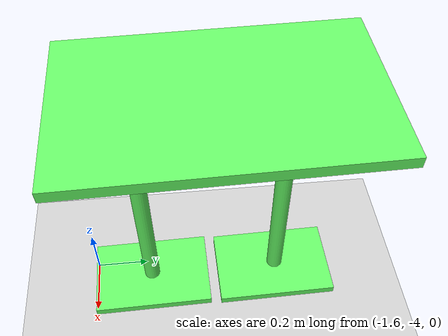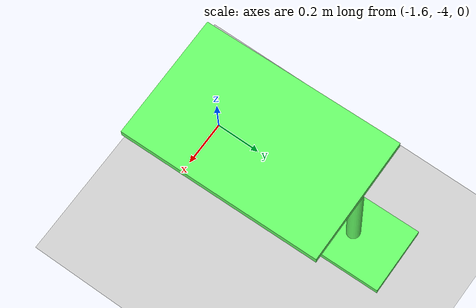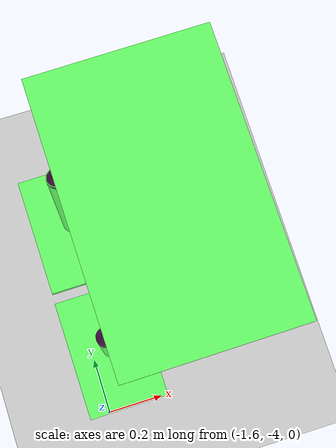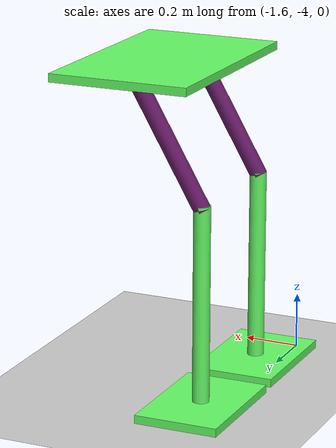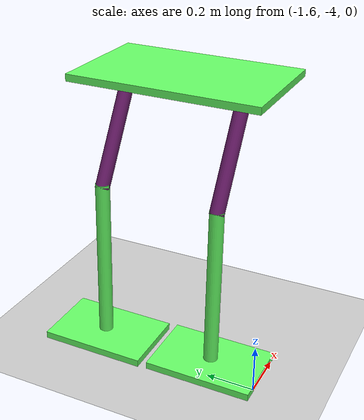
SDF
<sdf version="1.6">
 <world name="default">
  <model name="ground_plane">
   <static>1</static>
   <link name="link">
    <collision name="collision">
     <geometry><plane><normal>0 0 1</normal><size>100 100</size></plane></geometry>
     <surface><friction><ode><mu>100</mu><mu2>50</mu2></ode></friction></surface>
    </collision>
    <visual name="visual">
     <cast_shadows>0</cast_shadows>
     <geometry><plane><normal>0 0 1</normal><size>100 100</size></plane></geometry>
     <material>
      <script><uri>file://media/materials/scripts/gazebo.material</uri><name>Gazebo/Grey</name></script>
     </material>
    </visual>
   </link>
  </model>
  <model name="HumanoidRobot_clone">
   <link name="link_0">
    <inertial>
     <mass>0.5</mass>
     <inertia>
      <ixx>0.166667</ixx>
      <ixy>0</ixy>
      <ixz>0</ixz>
      <iyy>0.166667</iyy>
      <iyz>0</iyz>
      <izz>0.166667</izz>
     </inertia>
    </inertial>
    <pose>-0.001429 0.140202 1.05373 0 -0 0</pose>
    <visual name="visual">
     <geometry><box><size>0.8 0.5 0.03</size></box></geometry>
     <material>
      <lighting>1</lighting>
      <script><uri>file://media/materials/scripts/gazebo.material</uri><name>Gazebo/Grey</name></script>
      <shader type="pixel"><normal_map>__default__</normal_map></shader>
      <ambient>0.1 1 0.1 1</ambient>
      <diffuse>0.4 1 0.4 1</diffuse>
      <specular>0.01 0.01 0.01 1</specular>
      <emissive>0 0 0 1</emissive>
     </material>
    </visual>
    <collision name="collision">
     <geometry><box><size>0.8 0.5 0.03</size></box></geometry>
     <surface>
      <friction>
       <ode><mu>1</mu><mu2>1</mu2><fdir1>0 0 0</fdir1><slip1>0</slip1><slip2>0</slip2></ode>
       <torsional>
        <coefficient>1</coefficient>
        <patch_radius>0</patch_radius>
        <surface_radius>0</surface_radius>
        <use_patch_radius>1</use_patch_radius>
        <ode><slip>0</slip></ode>
       </torsional>
      </friction>
      <bounce><restitution_coefficient>0</restitution_coefficient><threshold>1e+06</threshold></bounce>
      <contact>
       <collide_without_contact>0</collide_without_contact>
       <collide_without_contact_bitmask>1</collide_without_contact_bitmask>
       <collide_bitmask>1</collide_bitmask>
       <ode>
        <soft_cfm>0</soft_cfm>
        <soft_erp>0.2</soft_erp>
        <kp>1e+13</kp>
        <kd>1</kd>
        <max_vel>0.01</max_vel>
        <min_depth>0</min_depth>
       </ode>
       <bullet>
        <split_impulse>1</split_impulse>
        <split_impulse_penetration_threshold>-0.01</split_impulse_penetration_threshold>
        <soft_cfm>0</soft_cfm>
        <soft_erp>0.2</soft_erp>
        <kp>1e+13</kp>
        <kd>1</kd>
       </bullet>
      </contact>
     </surface>
    </collision>
   </link>
   <link name="link_1">
    <inertial>
     <mass>1</mass>
     <inertia>
      <ixx>0.166667</ixx>
      <ixy>0</ixy>
      <ixz>0</ixz>
      <iyy>0.166667</iyy>
      <iyz>0</iyz>
      <izz>0.166667</izz>
     </inertia>
    </inertial>
    <pose>-0.241429 -0.104023 -0.081476 0 -0 0</pose>
    <visual name="visual">
     <geometry><box><size>0.45 0.3 0.03</size></box></geometry>
     <material>
      <lighting>1</lighting>
      <script><uri>file://media/materials/scripts/gazebo.material</uri><name>Gazebo/Grey</name></script>
      <shader type="pixel"><normal_map>__default__</normal_map></shader>
      <ambient>0.1 1 0.1 1</ambient>
      <diffuse>0.4 1 0.4 1</diffuse>
      <specular>0.01 0.01 0.01 1</specular>
      <emissive>0 0 0 1</emissive>
     </material>
    </visual>
    <collision name="collision">
     <geometry><box><size>0.45 0.3 0.03</size></box></geometry>
     <surface>
      <friction>
       <ode><mu>1</mu><mu2>1</mu2><fdir1>0 0 0</fdir1><slip1>0</slip1><slip2>0</slip2></ode>
       <torsional>
        <coefficient>1</coefficient>
        <patch_radius>0</patch_radius>
        <surface_radius>0</surface_radius>
        <use_patch_radius>1</use_patch_radius>
        <ode><slip>0</slip></ode>
       </torsional>
      </friction>
      <bounce><restitution_coefficient>0</restitution_coefficient><threshold>1e+06</threshold></bounce>
      <contact>
       <collide_without_contact>0</collide_without_contact>
       <collide_without_contact_bitmask>1</collide_without_contact_bitmask>
       <collide_bitmask>1</collide_bitmask>
       <ode>
        <soft_cfm>0</soft_cfm>
        <soft_erp>0.2</soft_erp>
        <kp>1e+13</kp>
        <kd>1</kd>
        <max_vel>0.01</max_vel>
        <min_depth>0</min_depth>
       </ode>
       <bullet>
        <split_impulse>1</split_impulse>
        <split_impulse_penetration_threshold>-0.01</split_impulse_penetration_threshold>
        <soft_cfm>0</soft_cfm>
        <soft_erp>0.2</soft_erp>
        <kp>1e+13</kp>
        <kd>1</kd>
       </bullet>
      </contact>
     </surface>
    </collision>
   </link>
   <link name="link_1_clone">
    <inertial>
     <mass>0.5</mass>
     <inertia>
      <ixx>0.166667</ixx>
      <ixy>0</ixy>
      <ixz>0</ixz>
      <iyy>0.166667</iyy>
      <iyz>0</iyz>
      <izz>0.166667</izz>
     </inertia>
    </inertial>
    <pose>0.248571 -0.105528 -0.074363 0 -0 0</pose>
    <visual name="visual">
     <geometry><box><size>0.45 0.3 0.03</size></box></geometry>
     <material>
      <lighting>1</lighting>
      <script><uri>file://media/materials/scripts/gazebo.material</uri><name>Gazebo/Grey</name></script>
      <shader type="pixel"><normal_map>__default__</normal_map></shader>
      <ambient>0.1 1 0.1 1</ambient>
      <diffuse>0.4 1 0.4 1</diffuse>
      <specular>0.01 0.01 0.01 1</specular>
      <emissive>0 0 0 1</emissive>
     </material>
    </visual>
    <collision name="collision">
     <geometry><box><size>0.45 0.3 0.03</size></box></geometry>
     <surface>
      <friction>
       <ode><mu>1</mu><mu2>1</mu2><fdir1>0 0 0</fdir1><slip1>0</slip1><slip2>0</slip2></ode>
       <torsional>
        <coefficient>1</coefficient>
        <patch_radius>0</patch_radius>
        <surface_radius>0</surface_radius>
        <use_patch_radius>1</use_patch_radius>
        <ode><slip>0</slip></ode>
       </torsional>
      </friction>
      <bounce><restitution_coefficient>0</restitution_coefficient><threshold>1e+06</threshold></bounce>
      <contact>
       <collide_without_contact>0</collide_without_contact>
       <collide_without_contact_bitmask>1</collide_without_contact_bitmask>
       <collide_bitmask>1</collide_bitmask>
       <ode>
        <soft_cfm>0</soft_cfm>
        <soft_erp>0.2</soft_erp>
        <kp>1e+13</kp>
        <kd>1</kd>
        <max_vel>0.01</max_vel>
        <min_depth>0</min_depth>
       </ode>
       <bullet>
        <split_impulse>1</split_impulse>
        <split_impulse_penetration_threshold>-0.01</split_impulse_penetration_threshold>
        <soft_cfm>0</soft_cfm>
        <soft_erp>0.2</soft_erp>
        <kp>1e+13</kp>
        <kd>1</kd>
       </bullet>
      </contact>
     </surface>
    </collision>
   </link>
   <link name="link_2">
    <inertial>
     <mass>0.5</mass>
     <inertia><ixx>0.145833</ixx><ixy>0</ixy><ixz>0</ixz><iyy>0.145833</iyy><iyz>0</iyz><izz>0.125</izz></inertia>
    </inertial>
    <pose>-0.251429 -0.105528 0.633067 0 -0 0</pose>
    <visual name="visual">
     <pose>0 0 -0.35 0 -0 0</pose>
     <geometry><cylinder><radius>0.03</radius><length>0.7</length></cylinder></geometry>
     <material>
      <lighting>1</lighting>
      <script><uri>file://media/materials/scripts/gazebo.material</uri><name>Gazebo/Grey</name></script>
      <shader type="pixel"><normal_map>__default__</normal_map></shader>
      <ambient>0.1 1 0.1 1</ambient>
      <diffuse>0.4 1 0.4 1</diffuse>
      <specular>0.01 0.01 0.01 1</specular>
      <emissive>0 0 0 1</emissive>
     </material>
    </visual>
    <collision name="collision">
     <pose>0 0 -0.35 0 -0 0</pose>
     <geometry><cylinder><radius>0.03</radius><length>0.7</length></cylinder></geometry>
     <surface>
      <friction>
       <ode><mu>1</mu><mu2>1</mu2><fdir1>0 0 0</fdir1><slip1>0</slip1><slip2>0</slip2></ode>
       <torsional>
        <coefficient>1</coefficient>
        <patch_radius>0</patch_radius>
        <surface_radius>0</surface_radius>
        <use_patch_radius>1</use_patch_radius>
        <ode><slip>0</slip></ode>
       </torsional>
      </friction>
      <bounce><restitution_coefficient>0</restitution_coefficient><threshold>1e+06</threshold></bounce>
      <contact>
       <collide_without_contact>0</collide_without_contact>
       <collide_without_contact_bitmask>1</collide_without_contact_bitmask>
       <collide_bitmask>1</collide_bitmask>
       <ode>
        <soft_cfm>0</soft_cfm>
        <soft_erp>0.2</soft_erp>
        <kp>1e+13</kp>
        <kd>1</kd>
        <max_vel>0.01</max_vel>
        <min_depth>0</min_depth>
       </ode>
       <bullet>
        <split_impulse>1</split_impulse>
        <split_impulse_penetration_threshold>-0.01</split_impulse_penetration_threshold>
        <soft_cfm>0</soft_cfm>
        <soft_erp>0.2</soft_erp>
        <kp>1e+13</kp>
        <kd>1</kd>
       </bullet>
      </contact>
     </surface>
    </collision>
   </link>
   <link name="link_2_clone">
    <inertial>
     <mass>1</mass>
     <inertia><ixx>0.145833</ixx><ixy>0</ixy><ixz>0</ixz><iyy>0.145833</iyy><iyz>0</iyz><izz>0.125</izz></inertia>
    </inertial>
    <pose>0.248571 -0.105528 0.62702 0 -0 0</pose>
    <visual name="visual">
     <pose>0 0 -0.35 0 -0 0</pose>
     <geometry><cylinder><radius>0.03</radius><length>0.7</length></cylinder></geometry>
     <material>
      <lighting>1</lighting>
      <script><uri>file://media/materials/scripts/gazebo.material</uri><name>Gazebo/Grey</name></script>
      <shader type="pixel"><normal_map>__default__</normal_map></shader>
      <ambient>0.1 1 0.1 1</ambient>
      <diffuse>0.4 1 0.4 1</diffuse>
      <specular>0.01 0.01 0.01 1</specular>
      <emissive>0 0 0 1</emissive>
     </material>
    </visual>
    <collision name="collision">
     <pose>0 0 -0.35 0 -0 0</pose>
     <geometry><cylinder><radius>0.03</radius><length>0.7</length></cylinder></geometry>
     <surface>
      <friction>
       <ode><mu>1</mu><mu2>1</mu2><fdir1>0 0 0</fdir1><slip1>0</slip1><slip2>0</slip2></ode>
       <torsional>
        <coefficient>1</coefficient>
        <patch_radius>0</patch_radius>
        <surface_radius>0</surface_radius>
        <use_patch_radius>1</use_patch_radius>
        <ode><slip>0</slip></ode>
       </torsional>
      </friction>
      <bounce><restitution_coefficient>0</restitution_coefficient><threshold>1e+06</threshold></bounce>
      <contact>
       <collide_without_contact>0</collide_without_contact>
       <collide_without_contact_bitmask>1</collide_without_contact_bitmask>
       <collide_bitmask>1</collide_bitmask>
       <ode>
        <soft_cfm>0</soft_cfm>
        <soft_erp>0.2</soft_erp>
        <kp>1e+13</kp>
        <kd>1</kd>
        <max_vel>0.01</max_vel>
        <min_depth>0</min_depth>
       </ode>
       <bullet>
        <split_impulse>1</split_impulse>
        <split_impulse_penetration_threshold>-0.01</split_impulse_penetration_threshold>
        <soft_cfm>0</soft_cfm>
        <soft_erp>0.2</soft_erp>
        <kp>1e+13</kp>
        <kd>1</kd>
       </bullet>
      </contact>
     </surface>
    </collision>
   </link>
   <link name="link_3">
    <inertial>
     <mass>1</mass>
     <inertia><ixx>0.145833</ixx><ixy>0</ixy><ixz>0</ixz><iyy>0.145833</iyy><iyz>0</iyz><izz>0.125</izz></inertia>
    </inertial>
    <pose>0.248571 0.140202 1.04601 -0.523 0 0</pose>
    <visual name="visual">
     <pose>0 0 -0.25 0 -0 0</pose>
     <geometry><cylinder><radius>0.03</radius><length>0.5</length></cylinder></geometry>
     <material>
      <lighting>1</lighting>
      <script><uri>file://media/materials/scripts/gazebo.material</uri><name>Gazebo/Grey</name></script>
      <shader type="pixel"><normal_map>__default__</normal_map></shader>
      <ambient>0.1 1 0.1 1</ambient>
      <diffuse>0.4 0.1 0.4 1</diffuse>
      <specular>0.01 0.01 0.01 1</specular>
      <emissive>0 0 0 1</emissive>
     </material>
    </visual>
    <collision name="collision">
     <pose>0 0 -0.25 0 -0 0</pose>
     <geometry><cylinder><radius>0.03</radius><length>0.5</length></cylinder></geometry>
     <surface>
      <friction>
       <ode><mu>1</mu><mu2>1</mu2><fdir1>0 0 0</fdir1><slip1>0</slip1><slip2>0</slip2></ode>
       <torsional>
        <coefficient>1</coefficient>
        <patch_radius>0</patch_radius>
        <surface_radius>0</surface_radius>
        <use_patch_radius>1</use_patch_radius>
        <ode><slip>0</slip></ode>
       </torsional>
      </friction>
      <bounce><restitution_coefficient>0</restitution_coefficient><threshold>1e+06</threshold></bounce>
      <contact>
       <collide_without_contact>0</collide_without_contact>
       <collide_without_contact_bitmask>1</collide_without_contact_bitmask>
       <collide_bitmask>1</collide_bitmask>
       <ode>
        <soft_cfm>0</soft_cfm>
        <soft_erp>0.2</soft_erp>
        <kp>1e+13</kp>
        <kd>1</kd>
        <max_vel>0.01</max_vel>
        <min_depth>0</min_depth>
       </ode>
       <bullet>
        <split_impulse>1</split_impulse>
        <split_impulse_penetration_threshold>-0.01</split_impulse_penetration_threshold>
        <soft_cfm>0</soft_cfm>
        <soft_erp>0.2</soft_erp>
        <kp>1e+13</kp>
        <kd>1</kd>
       </bullet>
      </contact>
     </surface>
    </collision>
   </link>
   <link name="link_3_clone">
    <inertial>
     <mass>1</mass>
     <inertia><ixx>0.145833</ixx><ixy>0</ixy><ixz>0</ixz><iyy>0.145833</iyy><iyz>0</iyz><izz>0.125</izz></inertia>
    </inertial>
    <pose>-0.251429 0.140202 1.04601 -0.523 0 0</pose>
    <visual name="visual">
     <pose>0 0 -0.25 0 -0 0</pose>
     <geometry><cylinder><radius>0.03</radius><length>0.5</length></cylinder></geometry>
     <material>
      <lighting>1</lighting>
      <script><uri>file://media/materials/scripts/gazebo.material</uri><name>Gazebo/Grey</name></script>
      <shader type="pixel"><normal_map>__default__</normal_map></shader>
      <ambient>0.1 1 0.1 1</ambient>
      <diffuse>0.4 0.1 0.4 1</diffuse>
      <specular>0.01 0.01 0.01 1</specular>
      <emissive>0 0 0 1</emissive>
     </material>
    </visual>
    <collision name="collision">
     <pose>0 0 -0.25 0 -0 0</pose>
     <geometry><cylinder><radius>0.03</radius><length>0.5</length></cylinder></geometry>
     <surface>
      <friction>
       <ode><mu>1</mu><mu2>1</mu2><fdir1>0 0 0</fdir1><slip1>0</slip1><slip2>0</slip2></ode>
       <torsional>
        <coefficient>1</coefficient>
        <patch_radius>0</patch_radius>
        <surface_radius>0</surface_radius>
        <use_patch_radius>1</use_patch_radius>
        <ode><slip>0</slip></ode>
       </torsional>
      </friction>
      <bounce><restitution_coefficient>0</restitution_coefficient><threshold>1e+06</threshold></bounce>
      <contact>
       <collide_without_contact>0</collide_without_contact>
       <collide_without_contact_bitmask>1</collide_without_contact_bitmask>
       <collide_bitmask>1</collide_bitmask>
       <ode>
        <soft_cfm>0</soft_cfm>
        <soft_erp>0.2</soft_erp>
        <kp>1e+13</kp>
        <kd>1</kd>
        <max_vel>0.01</max_vel>
        <min_depth>0</min_depth>
       </ode>
       <bullet>
        <split_impulse>1</split_impulse>
        <split_impulse_penetration_threshold>-0.01</split_impulse_penetration_threshold>
        <soft_cfm>0</soft_cfm>
        <soft_erp>0.2</soft_erp>
        <kp>1e+13</kp>
        <kd>1</kd>
       </bullet>
      </contact>
     </surface>
    </collision>
   </link>
   <joint name="link_0_JOINT_0" type="fixed">
    <parent>link_0</parent>
    <child>link_3_clone</child>
    <physics>
     <ode><limit><cfm>0</cfm><erp>0.2</erp></limit><suspension><cfm>0</cfm><erp>0.2</erp></suspension></ode>
    </physics>
   </joint>
   <joint name="link_0_JOINT_1" type="fixed">
    <parent>link_0</parent>
    <child>link_3</child>
    <physics>
     <ode><limit><cfm>0</cfm><erp>0.2</erp></limit><suspension><cfm>0</cfm><erp>0.2</erp></suspension></ode>
    </physics>
   </joint>
   <joint name="link_0_JOINT_2" type="fixed">
    <parent>link_0</parent>
    <child>link_3_clone</child>
    <physics>
     <ode><limit><cfm>0</cfm><erp>0.2</erp></limit><suspension><cfm>0</cfm><erp>0.2</erp></suspension></ode>
    </physics>
   </joint>
   <joint name="link_0_JOINT_3" type="fixed">
    <parent>link_0</parent>
    <child>link_3</child>
    <physics>
     <ode><limit><cfm>0</cfm><erp>0.2</erp></limit><suspension><cfm>0</cfm><erp>0.2</erp></suspension></ode>
    </physics>
   </joint>
   <joint name="link_2_JOINT_6" type="fixed">
    <parent>link_2</parent>
    <child>link_1</child>
    <physics>
     <ode><limit><cfm>0</cfm><erp>0.2</erp></limit><suspension><cfm>0</cfm><erp>0.2</erp></suspension></ode>
    </physics>
   </joint>
   <joint name="link_2_JOINT_8" type="fixed">
    <parent>link_2</parent>
    <child>link_1</child>
    <physics>
     <ode><limit><cfm>0</cfm><erp>0.2</erp></limit><suspension><cfm>0</cfm><erp>0.2</erp></suspension></ode>
    </physics>
   </joint>
   <joint name="link_2_clone_JOINT_7" type="fixed">
    <parent>link_2_clone</parent>
    <child>link_1_clone</child>
    <physics>
     <ode><limit><cfm>0</cfm><erp>0.2</erp></limit><suspension><cfm>0</cfm><erp>0.2</erp></suspension></ode>
    </physics>
   </joint>
   <joint name="link_3_JOINT_1" type="fixed">
    <parent>link_3</parent>
    <child>link_2_clone</child>
    <physics>
     <ode><limit><cfm>0</cfm><erp>0.2</erp></limit><suspension><cfm>0</cfm><erp>0.2</erp></suspension></ode>
    </physics>
   </joint>
   <joint name="link_3_JOINT_5" type="revolute">
    <parent>link_3</parent>
    <child>link_2_clone</child>
    <axis>
     <xyz>1 0 0</xyz>
     <use_parent_model_frame>0</use_parent_model_frame>
     <limit>
      <lower>-1.79769e+308</lower>
      <upper>1.79769e+308</upper>
      <effort>-1</effort>
      <velocity>-1</velocity>
     </limit>
     <dynamics>
      <spring_reference>0</spring_reference>
      <spring_stiffness>0</spring_stiffness>
      <damping>0</damping>
      <friction>0</friction>
     </dynamics>
    </axis>
    <physics>
     <ode><limit><cfm>0</cfm><erp>0.2</erp></limit><suspension><cfm>0</cfm><erp>0.2</erp></suspension></ode>
    </physics>
   </joint>
   <joint name="link_3_clone_JOINT_0" type="fixed">
    <parent>link_3_clone</parent>
    <child>link_2</child>
    <physics>
     <ode><limit><cfm>0</cfm><erp>0.2</erp></limit><suspension><cfm>0</cfm><erp>0.2</erp></suspension></ode>
    </physics>
   </joint>
   <joint name="link_3_clone_JOINT_2" type="fixed">
    <parent>link_3_clone</parent>
    <child>link_2</child>
    <physics>
     <ode><limit><cfm>0</cfm><erp>0.2</erp></limit><suspension><cfm>0</cfm><erp>0.2</erp></suspension></ode>
    </physics>
   </joint>
   <joint name="link_3_clone_JOINT_4" type="revolute">
    <parent>link_3_clone</parent>
    <child>link_2</child>
    <axis>
     <xyz>1 0 0</xyz>
     <use_parent_model_frame>0</use_parent_model_frame>
     <limit>
      <lower>-1.79769e+308</lower>
      <upper>1.79769e+308</upper>
      <effort>-1</effort>
      <velocity>-1</velocity>
     </limit>
     <dynamics>
      <spring_reference>0</spring_reference>
      <spring_stiffness>0</spring_stiffness>
      <damping>0</damping>
      <friction>0</friction>
     </dynamics>
    </axis>
    <physics>
     <ode><limit><cfm>0</cfm><erp>0.2</erp></limit><suspension><cfm>0</cfm><erp>0.2</erp></suspension></ode>
    </physics>
   </joint>
   <static>0</static>
   <pose>-1.42362 -3.53113 0.096216 -1.7e-05 0.014483 -1.56134</pose>
  </model>
 </world>
</sdf>
